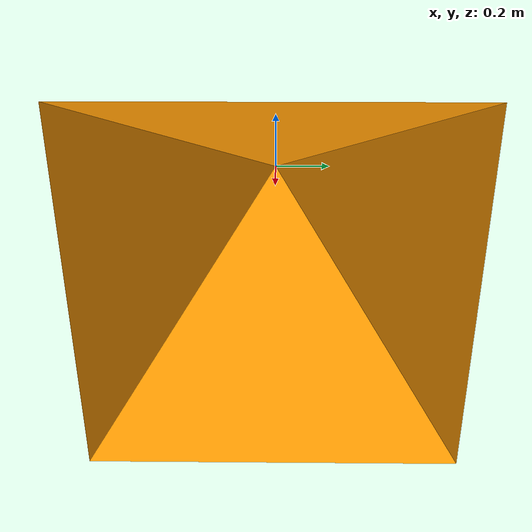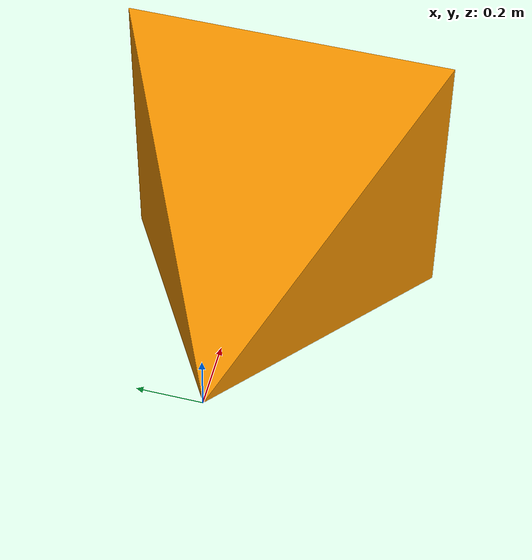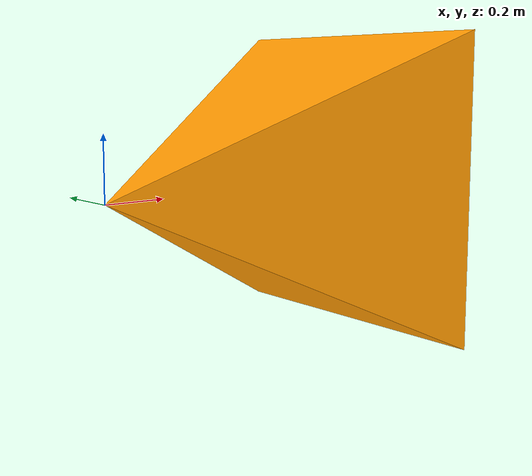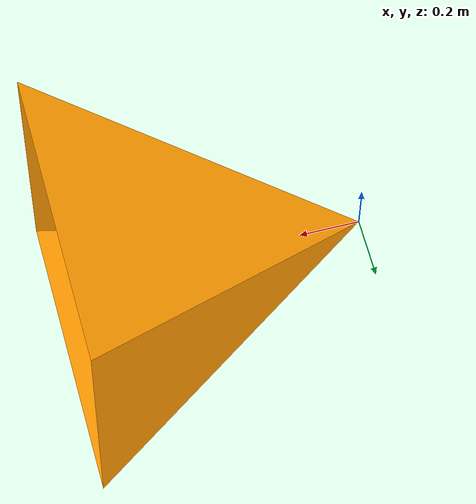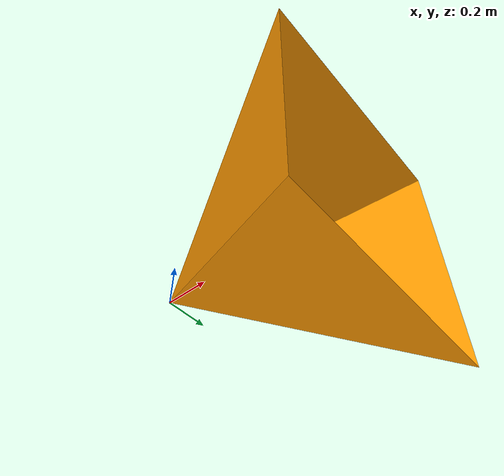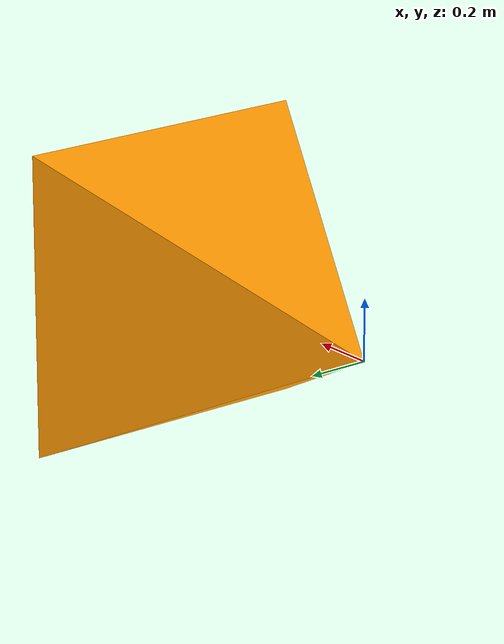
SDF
<?xml version="1.0" ?>
<sdf version="1.6">
  <model name="camera_frustum">
    <static>true</static>

    <link name="frustum_link">
      <visual name="frustum_visual">
        <geometry>
          <mesh>
            <uri>model://camera_frustum/meshes/frustum.dae</uri>
            <scale>1 1 1</scale>
          </mesh>
        </geometry>

        <material>
          <ambient>1 0.6 0 1</ambient>
          <diffuse>1 0.6 0 1</diffuse>
          <transparency>0.4</transparency>
        </material>
      </visual>
    </link>

  </model>
</sdf>
